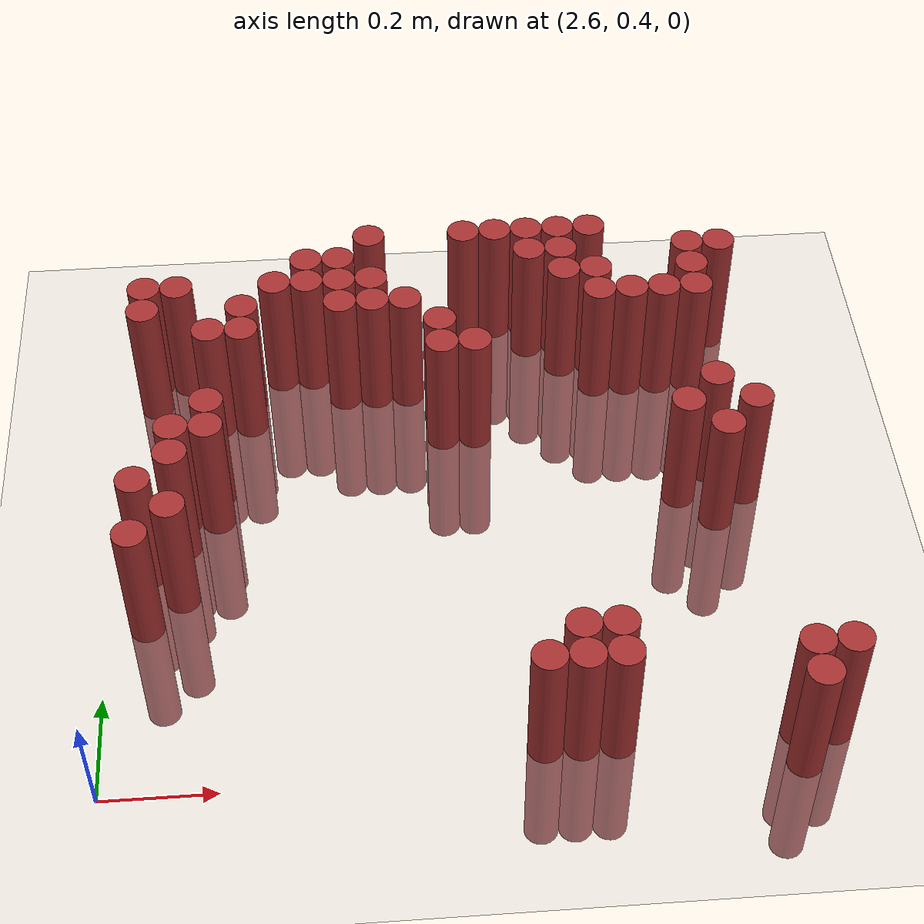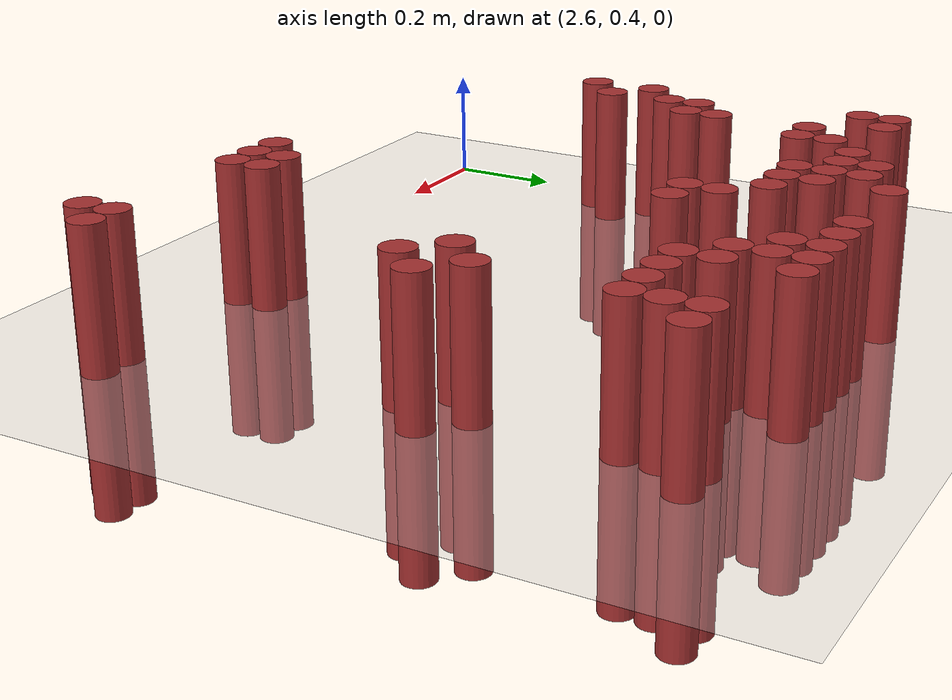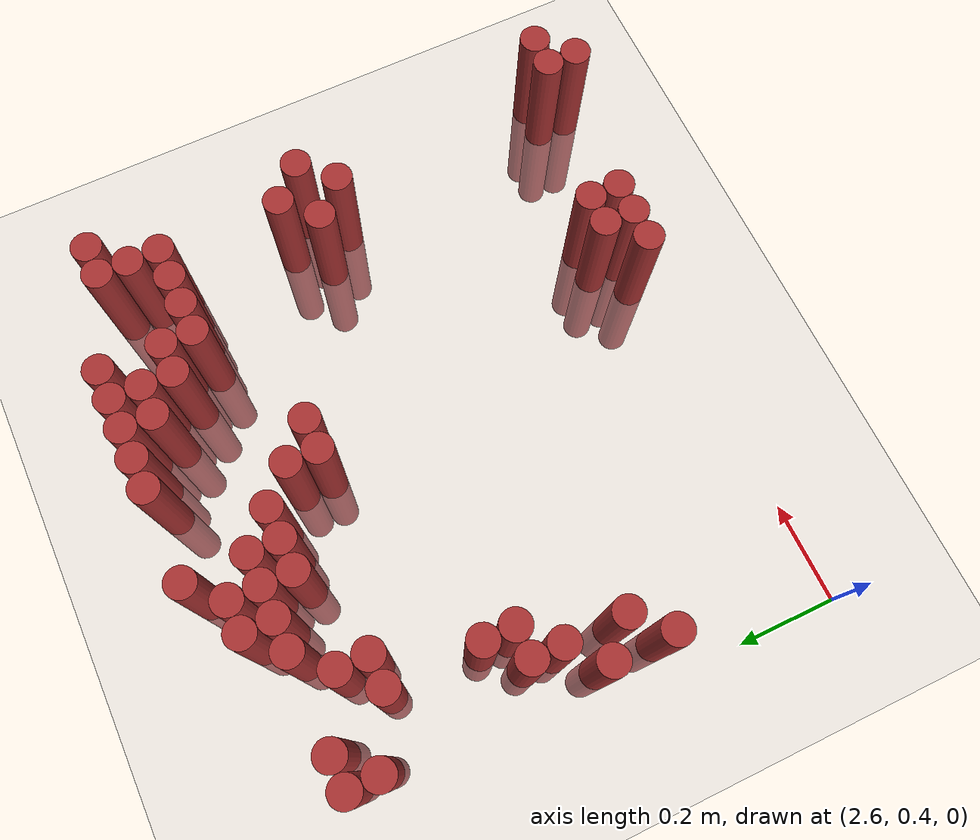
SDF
<sdf version="1.6">
 <world name="default">
  <model name="ground_plane">
   <static>1</static>
   <link name="link">
    <collision name="collision">
     <geometry><plane><normal>0 0 1</normal><size>100 100</size></plane></geometry>
     <surface><friction><ode><mu>100</mu><mu2>50</mu2></ode></friction></surface>
    </collision>
    <visual name="visual">
     <cast_shadows>0</cast_shadows>
     <geometry><plane><normal>0 0 1</normal><size>100 100</size></plane></geometry>
     <material>
      <script><uri>file://media/materials/scripts/gazebo.material</uri><name>Gazebo/Grey</name></script>
     </material>
    </visual>
   </link>
  </model>
  <model name="unit_cylinder_174">
   <static>1</static>
   <pose>3.090000 1.470000 0.000000 0.000000 0.000000 0.000000</pose>
   <link name="link">
    <inertial>
     <mass>1</mass>
     <inertia><ixx>0.145833</ixx><ixy>0</ixy><ixz>0</ixz><iyy>0.145833</iyy><iyz>0</iyz><izz>0.125</izz></inertia>
    </inertial>
    <collision name="collision">
     <geometry><cylinder><radius>0.030000</radius><length>0.5</length></cylinder></geometry>
    </collision>
    <visual name="visual">
     <geometry><cylinder><radius>0.030000</radius><length>0.5</length></cylinder></geometry>
     <material>
      <ambient>0.648000 0.192000 0.192000 1</ambient>
      <diffuse>0.648000 0.192000 0.192000 1</diffuse>
     </material>
     <material>
      <script><name>Gazebo/Grey</name><uri>file://media/materials/scripts/gazebo.material</uri></script>
     </material>
    </visual>
   </link>
  </model>
  <model name="unit_cylinder_175">
   <static>1</static>
   <pose>3.270000 1.470000 0.000000 0.000000 0.000000 0.000000</pose>
   <link name="link">
    <inertial>
     <mass>1</mass>
     <inertia><ixx>0.145833</ixx><ixy>0</ixy><ixz>0</ixz><iyy>0.145833</iyy><iyz>0</iyz><izz>0.125</izz></inertia>
    </inertial>
    <collision name="collision">
     <geometry><cylinder><radius>0.030000</radius><length>0.5</length></cylinder></geometry>
    </collision>
    <visual name="visual">
     <geometry><cylinder><radius>0.030000</radius><length>0.5</length></cylinder></geometry>
     <material>
      <ambient>0.648000 0.192000 0.192000 1</ambient>
      <diffuse>0.648000 0.192000 0.192000 1</diffuse>
     </material>
     <material>
      <script><name>Gazebo/Grey</name><uri>file://media/materials/scripts/gazebo.material</uri></script>
     </material>
    </visual>
   </link>
  </model>
  <model name="unit_cylinder_176">
   <static>1</static>
   <pose>3.330000 1.470000 0.000000 0.000000 0.000000 0.000000</pose>
   <link name="link">
    <inertial>
     <mass>1</mass>
     <inertia><ixx>0.145833</ixx><ixy>0</ixy><ixz>0</ixz><iyy>0.145833</iyy><iyz>0</iyz><izz>0.125</izz></inertia>
    </inertial>
    <collision name="collision">
     <geometry><cylinder><radius>0.030000</radius><length>0.5</length></cylinder></geometry>
    </collision>
    <visual name="visual">
     <geometry><cylinder><radius>0.030000</radius><length>0.5</length></cylinder></geometry>
     <material>
      <ambient>0.648000 0.192000 0.192000 1</ambient>
      <diffuse>0.648000 0.192000 0.192000 1</diffuse>
     </material>
     <material>
      <script><name>Gazebo/Grey</name><uri>file://media/materials/scripts/gazebo.material</uri></script>
     </material>
    </visual>
   </link>
  </model>
  <model name="unit_cylinder_177">
   <static>1</static>
   <pose>3.390000 1.470000 0.000000 0.000000 0.000000 0.000000</pose>
   <link name="link">
    <inertial>
     <mass>1</mass>
     <inertia><ixx>0.145833</ixx><ixy>0</ixy><ixz>0</ixz><iyy>0.145833</iyy><iyz>0</iyz><izz>0.125</izz></inertia>
    </inertial>
    <collision name="collision">
     <geometry><cylinder><radius>0.030000</radius><length>0.5</length></cylinder></geometry>
    </collision>
    <visual name="visual">
     <geometry><cylinder><radius>0.030000</radius><length>0.5</length></cylinder></geometry>
     <material>
      <ambient>0.648000 0.192000 0.192000 1</ambient>
      <diffuse>0.648000 0.192000 0.192000 1</diffuse>
     </material>
     <material>
      <script><name>Gazebo/Grey</name><uri>file://media/materials/scripts/gazebo.material</uri></script>
     </material>
    </visual>
   </link>
  </model>
  <model name="unit_cylinder_178">
   <static>1</static>
   <pose>3.450000 1.470000 0.000000 0.000000 0.000000 0.000000</pose>
   <link name="link">
    <inertial>
     <mass>1</mass>
     <inertia><ixx>0.145833</ixx><ixy>0</ixy><ixz>0</ixz><iyy>0.145833</iyy><iyz>0</iyz><izz>0.125</izz></inertia>
    </inertial>
    <collision name="collision">
     <geometry><cylinder><radius>0.030000</radius><length>0.5</length></cylinder></geometry>
    </collision>
    <visual name="visual">
     <geometry><cylinder><radius>0.030000</radius><length>0.5</length></cylinder></geometry>
     <material>
      <ambient>0.648000 0.192000 0.192000 1</ambient>
      <diffuse>0.648000 0.192000 0.192000 1</diffuse>
     </material>
     <material>
      <script><name>Gazebo/Grey</name><uri>file://media/materials/scripts/gazebo.material</uri></script>
     </material>
    </visual>
   </link>
  </model>
  <model name="unit_cylinder_179">
   <static>1</static>
   <pose>3.510000 1.470000 0.000000 0.000000 0.000000 0.000000</pose>
   <link name="link">
    <inertial>
     <mass>1</mass>
     <inertia><ixx>0.145833</ixx><ixy>0</ixy><ixz>0</ixz><iyy>0.145833</iyy><iyz>0</iyz><izz>0.125</izz></inertia>
    </inertial>
    <collision name="collision">
     <geometry><cylinder><radius>0.030000</radius><length>0.5</length></cylinder></geometry>
    </collision>
    <visual name="visual">
     <geometry><cylinder><radius>0.030000</radius><length>0.5</length></cylinder></geometry>
     <material>
      <ambient>0.648000 0.192000 0.192000 1</ambient>
      <diffuse>0.648000 0.192000 0.192000 1</diffuse>
     </material>
     <material>
      <script><name>Gazebo/Grey</name><uri>file://media/materials/scripts/gazebo.material</uri></script>
     </material>
    </visual>
   </link>
  </model>
  <model name="unit_cylinder_186">
   <static>1</static>
   <pose>2.970000 1.410000 0.000000 0.000000 0.000000 0.000000</pose>
   <link name="link">
    <inertial>
     <mass>1</mass>
     <inertia><ixx>0.145833</ixx><ixy>0</ixy><ixz>0</ixz><iyy>0.145833</iyy><iyz>0</iyz><izz>0.125</izz></inertia>
    </inertial>
    <collision name="collision">
     <geometry><cylinder><radius>0.030000</radius><length>0.5</length></cylinder></geometry>
    </collision>
    <visual name="visual">
     <geometry><cylinder><radius>0.030000</radius><length>0.5</length></cylinder></geometry>
     <material>
      <ambient>0.648000 0.192000 0.192000 1</ambient>
      <diffuse>0.648000 0.192000 0.192000 1</diffuse>
     </material>
     <material>
      <script><name>Gazebo/Grey</name><uri>file://media/materials/scripts/gazebo.material</uri></script>
     </material>
    </visual>
   </link>
  </model>
  <model name="unit_cylinder_187">
   <static>1</static>
   <pose>3.030000 1.410000 0.000000 0.000000 0.000000 0.000000</pose>
   <link name="link">
    <inertial>
     <mass>1</mass>
     <inertia><ixx>0.145833</ixx><ixy>0</ixy><ixz>0</ixz><iyy>0.145833</iyy><iyz>0</iyz><izz>0.125</izz></inertia>
    </inertial>
    <collision name="collision">
     <geometry><cylinder><radius>0.030000</radius><length>0.5</length></cylinder></geometry>
    </collision>
    <visual name="visual">
     <geometry><cylinder><radius>0.030000</radius><length>0.5</length></cylinder></geometry>
     <material>
      <ambient>0.648000 0.192000 0.192000 1</ambient>
      <diffuse>0.648000 0.192000 0.192000 1</diffuse>
     </material>
     <material>
      <script><name>Gazebo/Grey</name><uri>file://media/materials/scripts/gazebo.material</uri></script>
     </material>
    </visual>
   </link>
  </model>
  <model name="unit_cylinder_188">
   <static>1</static>
   <pose>3.390000 1.410000 0.000000 0.000000 0.000000 0.000000</pose>
   <link name="link">
    <inertial>
     <mass>1</mass>
     <inertia><ixx>0.145833</ixx><ixy>0</ixy><ixz>0</ixz><iyy>0.145833</iyy><iyz>0</iyz><izz>0.125</izz></inertia>
    </inertial>
    <collision name="collision">
     <geometry><cylinder><radius>0.030000</radius><length>0.5</length></cylinder></geometry>
    </collision>
    <visual name="visual">
     <geometry><cylinder><radius>0.030000</radius><length>0.5</length></cylinder></geometry>
     <material>
      <ambient>0.648000 0.192000 0.192000 1</ambient>
      <diffuse>0.648000 0.192000 0.192000 1</diffuse>
     </material>
     <material>
      <script><name>Gazebo/Grey</name><uri>file://media/materials/scripts/gazebo.material</uri></script>
     </material>
    </visual>
   </link>
  </model>
  <model name="unit_cylinder_189">
   <static>1</static>
   <pose>3.450000 1.410000 0.000000 0.000000 0.000000 0.000000</pose>
   <link name="link">
    <inertial>
     <mass>1</mass>
     <inertia><ixx>0.145833</ixx><ixy>0</ixy><ixz>0</ixz><iyy>0.145833</iyy><iyz>0</iyz><izz>0.125</izz></inertia>
    </inertial>
    <collision name="collision">
     <geometry><cylinder><radius>0.030000</radius><length>0.5</length></cylinder></geometry>
    </collision>
    <visual name="visual">
     <geometry><cylinder><radius>0.030000</radius><length>0.5</length></cylinder></geometry>
     <material>
      <ambient>0.648000 0.192000 0.192000 1</ambient>
      <diffuse>0.648000 0.192000 0.192000 1</diffuse>
     </material>
     <material>
      <script><name>Gazebo/Grey</name><uri>file://media/materials/scripts/gazebo.material</uri></script>
     </material>
    </visual>
   </link>
  </model>
  <model name="unit_cylinder_190">
   <static>1</static>
   <pose>3.690000 1.410000 0.000000 0.000000 0.000000 0.000000</pose>
   <link name="link">
    <inertial>
     <mass>1</mass>
     <inertia><ixx>0.145833</ixx><ixy>0</ixy><ixz>0</ixz><iyy>0.145833</iyy><iyz>0</iyz><izz>0.125</izz></inertia>
    </inertial>
    <collision name="collision">
     <geometry><cylinder><radius>0.030000</radius><length>0.5</length></cylinder></geometry>
    </collision>
    <visual name="visual">
     <geometry><cylinder><radius>0.030000</radius><length>0.5</length></cylinder></geometry>
     <material>
      <ambient>0.648000 0.192000 0.192000 1</ambient>
      <diffuse>0.648000 0.192000 0.192000 1</diffuse>
     </material>
     <material>
      <script><name>Gazebo/Grey</name><uri>file://media/materials/scripts/gazebo.material</uri></script>
     </material>
    </visual>
   </link>
  </model>
  <model name="unit_cylinder_191">
   <static>1</static>
   <pose>3.750000 1.410000 0.000000 0.000000 0.000000 0.000000</pose>
   <link name="link">
    <inertial>
     <mass>1</mass>
     <inertia><ixx>0.145833</ixx><ixy>0</ixy><ixz>0</ixz><iyy>0.145833</iyy><iyz>0</iyz><izz>0.125</izz></inertia>
    </inertial>
    <collision name="collision">
     <geometry><cylinder><radius>0.030000</radius><length>0.5</length></cylinder></geometry>
    </collision>
    <visual name="visual">
     <geometry><cylinder><radius>0.030000</radius><length>0.5</length></cylinder></geometry>
     <material>
      <ambient>0.648000 0.192000 0.192000 1</ambient>
      <diffuse>0.648000 0.192000 0.192000 1</diffuse>
     </material>
     <material>
      <script><name>Gazebo/Grey</name><uri>file://media/materials/scripts/gazebo.material</uri></script>
     </material>
    </visual>
   </link>
  </model>
  <model name="unit_cylinder_192">
   <static>1</static>
   <pose>2.670000 1.350000 0.000000 0.000000 0.000000 0.000000</pose>
   <link name="link">
    <inertial>
     <mass>1</mass>
     <inertia><ixx>0.145833</ixx><ixy>0</ixy><ixz>0</ixz><iyy>0.145833</iyy><iyz>0</iyz><izz>0.125</izz></inertia>
    </inertial>
    <collision name="collision">
     <geometry><cylinder><radius>0.030000</radius><length>0.5</length></cylinder></geometry>
    </collision>
    <visual name="visual">
     <geometry><cylinder><radius>0.030000</radius><length>0.5</length></cylinder></geometry>
     <material>
      <ambient>0.648000 0.192000 0.192000 1</ambient>
      <diffuse>0.648000 0.192000 0.192000 1</diffuse>
     </material>
     <material>
      <script><name>Gazebo/Grey</name><uri>file://media/materials/scripts/gazebo.material</uri></script>
     </material>
    </visual>
   </link>
  </model>
  <model name="unit_cylinder_193">
   <static>1</static>
   <pose>2.730000 1.350000 0.000000 0.000000 0.000000 0.000000</pose>
   <link name="link">
    <inertial>
     <mass>1</mass>
     <inertia><ixx>0.145833</ixx><ixy>0</ixy><ixz>0</ixz><iyy>0.145833</iyy><iyz>0</iyz><izz>0.125</izz></inertia>
    </inertial>
    <collision name="collision">
     <geometry><cylinder><radius>0.030000</radius><length>0.5</length></cylinder></geometry>
    </collision>
    <visual name="visual">
     <geometry><cylinder><radius>0.030000</radius><length>0.5</length></cylinder></geometry>
     <material>
      <ambient>0.648000 0.192000 0.192000 1</ambient>
      <diffuse>0.648000 0.192000 0.192000 1</diffuse>
     </material>
     <material>
      <script><name>Gazebo/Grey</name><uri>file://media/materials/scripts/gazebo.material</uri></script>
     </material>
    </visual>
   </link>
  </model>
  <model name="unit_cylinder_194">
   <static>1</static>
   <pose>2.910000 1.350000 0.000000 0.000000 0.000000 0.000000</pose>
   <link name="link">
    <inertial>
     <mass>1</mass>
     <inertia><ixx>0.145833</ixx><ixy>0</ixy><ixz>0</ixz><iyy>0.145833</iyy><iyz>0</iyz><izz>0.125</izz></inertia>
    </inertial>
    <collision name="collision">
     <geometry><cylinder><radius>0.030000</radius><length>0.5</length></cylinder></geometry>
    </collision>
    <visual name="visual">
     <geometry><cylinder><radius>0.030000</radius><length>0.5</length></cylinder></geometry>
     <material>
      <ambient>0.648000 0.192000 0.192000 1</ambient>
      <diffuse>0.648000 0.192000 0.192000 1</diffuse>
     </material>
     <material>
      <script><name>Gazebo/Grey</name><uri>file://media/materials/scripts/gazebo.material</uri></script>
     </material>
    </visual>
   </link>
  </model>
  <model name="unit_cylinder_195">
   <static>1</static>
   <pose>2.970000 1.350000 0.000000 0.000000 0.000000 0.000000</pose>
   <link name="link">
    <inertial>
     <mass>1</mass>
     <inertia><ixx>0.145833</ixx><ixy>0</ixy><ixz>0</ixz><iyy>0.145833</iyy><iyz>0</iyz><izz>0.125</izz></inertia>
    </inertial>
    <collision name="collision">
     <geometry><cylinder><radius>0.030000</radius><length>0.5</length></cylinder></geometry>
    </collision>
    <visual name="visual">
     <geometry><cylinder><radius>0.030000</radius><length>0.5</length></cylinder></geometry>
     <material>
      <ambient>0.648000 0.192000 0.192000 1</ambient>
      <diffuse>0.648000 0.192000 0.192000 1</diffuse>
     </material>
     <material>
      <script><name>Gazebo/Grey</name><uri>file://media/materials/scripts/gazebo.material</uri></script>
     </material>
    </visual>
   </link>
  </model>
  <model name="unit_cylinder_196">
   <static>1</static>
   <pose>3.030000 1.350000 0.000000 0.000000 0.000000 0.000000</pose>
   <link name="link">
    <inertial>
     <mass>1</mass>
     <inertia><ixx>0.145833</ixx><ixy>0</ixy><ixz>0</ixz><iyy>0.145833</iyy><iyz>0</iyz><izz>0.125</izz></inertia>
    </inertial>
    <collision name="collision">
     <geometry><cylinder><radius>0.030000</radius><length>0.5</length></cylinder></geometry>
    </collision>
    <visual name="visual">
     <geometry><cylinder><radius>0.030000</radius><length>0.5</length></cylinder></geometry>
     <material>
      <ambient>0.648000 0.192000 0.192000 1</ambient>
      <diffuse>0.648000 0.192000 0.192000 1</diffuse>
     </material>
     <material>
      <script><name>Gazebo/Grey</name><uri>file://media/materials/scripts/gazebo.material</uri></script>
     </material>
    </visual>
   </link>
  </model>
  <model name="unit_cylinder_197">
   <static>1</static>
   <pose>3.090000 1.350000 0.000000 0.000000 0.000000 0.000000</pose>
   <link name="link">
    <inertial>
     <mass>1</mass>
     <inertia><ixx>0.145833</ixx><ixy>0</ixy><ixz>0</ixz><iyy>0.145833</iyy><iyz>0</iyz><izz>0.125</izz></inertia>
    </inertial>
    <collision name="collision">
     <geometry><cylinder><radius>0.030000</radius><length>0.5</length></cylinder></geometry>
    </collision>
    <visual name="visual">
     <geometry><cylinder><radius>0.030000</radius><length>0.5</length></cylinder></geometry>
     <material>
      <ambient>0.648000 0.192000 0.192000 1</ambient>
      <diffuse>0.648000 0.192000 0.192000 1</diffuse>
     </material>
     <material>
      <script><name>Gazebo/Grey</name><uri>file://media/materials/scripts/gazebo.material</uri></script>
     </material>
    </visual>
   </link>
  </model>
  <model name="unit_cylinder_198">
   <static>1</static>
   <pose>3.450000 1.350000 0.000000 0.000000 0.000000 0.000000</pose>
   <link name="link">
    <inertial>
     <mass>1</mass>
     <inertia><ixx>0.145833</ixx><ixy>0</ixy><ixz>0</ixz><iyy>0.145833</iyy><iyz>0</iyz><izz>0.125</izz></inertia>
    </inertial>
    <collision name="collision">
     <geometry><cylinder><radius>0.030000</radius><length>0.5</length></cylinder></geometry>
    </collision>
    <visual name="visual">
     <geometry><cylinder><radius>0.030000</radius><length>0.5</length></cylinder></geometry>
     <material>
      <ambient>0.648000 0.192000 0.192000 1</ambient>
      <diffuse>0.648000 0.192000 0.192000 1</diffuse>
     </material>
     <material>
      <script><name>Gazebo/Grey</name><uri>file://media/materials/scripts/gazebo.material</uri></script>
     </material>
    </visual>
   </link>
  </model>
  <model name="unit_cylinder_199">
   <static>1</static>
   <pose>3.510000 1.350000 0.000000 0.000000 0.000000 0.000000</pose>
   <link name="link">
    <inertial>
     <mass>1</mass>
     <inertia><ixx>0.145833</ixx><ixy>0</ixy><ixz>0</ixz><iyy>0.145833</iyy><iyz>0</iyz><izz>0.125</izz></inertia>
    </inertial>
    <collision name="collision">
     <geometry><cylinder><radius>0.030000</radius><length>0.5</length></cylinder></geometry>
    </collision>
    <visual name="visual">
     <geometry><cylinder><radius>0.030000</radius><length>0.5</length></cylinder></geometry>
     <material>
      <ambient>0.648000 0.192000 0.192000 1</ambient>
      <diffuse>0.648000 0.192000 0.192000 1</diffuse>
     </material>
     <material>
      <script><name>Gazebo/Grey</name><uri>file://media/materials/scripts/gazebo.material</uri></script>
     </material>
    </visual>
   </link>
  </model>
  <model name="unit_cylinder_200">
   <static>1</static>
   <pose>3.690000 1.350000 0.000000 0.000000 0.000000 0.000000</pose>
   <link name="link">
    <inertial>
     <mass>1</mass>
     <inertia><ixx>0.145833</ixx><ixy>0</ixy><ixz>0</ixz><iyy>0.145833</iyy><iyz>0</iyz><izz>0.125</izz></inertia>
    </inertial>
    <collision name="collision">
     <geometry><cylinder><radius>0.030000</radius><length>0.5</length></cylinder></geometry>
    </collision>
    <visual name="visual">
     <geometry><cylinder><radius>0.030000</radius><length>0.5</length></cylinder></geometry>
     <material>
      <ambient>0.648000 0.192000 0.192000 1</ambient>
      <diffuse>0.648000 0.192000 0.192000 1</diffuse>
     </material>
     <material>
      <script><name>Gazebo/Grey</name><uri>file://media/materials/scripts/gazebo.material</uri></script>
     </material>
    </visual>
   </link>
  </model>
  <model name="unit_cylinder_201">
   <static>1</static>
   <pose>2.670000 1.290000 0.000000 0.000000 0.000000 0.000000</pose>
   <link name="link">
    <inertial>
     <mass>1</mass>
     <inertia><ixx>0.145833</ixx><ixy>0</ixy><ixz>0</ixz><iyy>0.145833</iyy><iyz>0</iyz><izz>0.125</izz></inertia>
    </inertial>
    <collision name="collision">
     <geometry><cylinder><radius>0.030000</radius><length>0.5</length></cylinder></geometry>
    </collision>
    <visual name="visual">
     <geometry><cylinder><radius>0.030000</radius><length>0.5</length></cylinder></geometry>
     <material>
      <ambient>0.648000 0.192000 0.192000 1</ambient>
      <diffuse>0.648000 0.192000 0.192000 1</diffuse>
     </material>
     <material>
      <script><name>Gazebo/Grey</name><uri>file://media/materials/scripts/gazebo.material</uri></script>
     </material>
    </visual>
   </link>
  </model>
  <model name="unit_cylinder_202">
   <static>1</static>
   <pose>2.850000 1.290000 0.000000 0.000000 0.000000 0.000000</pose>
   <link name="link">
    <inertial>
     <mass>1</mass>
     <inertia><ixx>0.145833</ixx><ixy>0</ixy><ixz>0</ixz><iyy>0.145833</iyy><iyz>0</iyz><izz>0.125</izz></inertia>
    </inertial>
    <collision name="collision">
     <geometry><cylinder><radius>0.030000</radius><length>0.5</length></cylinder></geometry>
    </collision>
    <visual name="visual">
     <geometry><cylinder><radius>0.030000</radius><length>0.5</length></cylinder></geometry>
     <material>
      <ambient>0.648000 0.192000 0.192000 1</ambient>
      <diffuse>0.648000 0.192000 0.192000 1</diffuse>
     </material>
     <material>
      <script><name>Gazebo/Grey</name><uri>file://media/materials/scripts/gazebo.material</uri></script>
     </material>
    </visual>
   </link>
  </model>
  <model name="unit_cylinder_203">
   <static>1</static>
   <pose>3.030000 1.290000 0.000000 0.000000 0.000000 0.000000</pose>
   <link name="link">
    <inertial>
     <mass>1</mass>
     <inertia><ixx>0.145833</ixx><ixy>0</ixy><ixz>0</ixz><iyy>0.145833</iyy><iyz>0</iyz><izz>0.125</izz></inertia>
    </inertial>
    <collision name="collision">
     <geometry><cylinder><radius>0.030000</radius><length>0.5</length></cylinder></geometry>
    </collision>
    <visual name="visual">
     <geometry><cylinder><radius>0.030000</radius><length>0.5</length></cylinder></geometry>
     <material>
      <ambient>0.648000 0.192000 0.192000 1</ambient>
      <diffuse>0.648000 0.192000 0.192000 1</diffuse>
     </material>
     <material>
      <script><name>Gazebo/Grey</name><uri>file://media/materials/scripts/gazebo.material</uri></script>
     </material>
    </visual>
   </link>
  </model>
  <model name="unit_cylinder_204">
   <static>1</static>
   <pose>3.090000 1.290000 0.000000 0.000000 0.000000 0.000000</pose>
   <link name="link">
    <inertial>
     <mass>1</mass>
     <inertia><ixx>0.145833</ixx><ixy>0</ixy><ixz>0</ixz><iyy>0.145833</iyy><iyz>0</iyz><izz>0.125</izz></inertia>
    </inertial>
    <collision name="collision">
     <geometry><cylinder><radius>0.030000</radius><length>0.5</length></cylinder></geometry>
    </collision>
    <visual name="visual">
     <geometry><cylinder><radius>0.030000</radius><length>0.5</length></cylinder></geometry>
     <material>
      <ambient>0.648000 0.192000 0.192000 1</ambient>
      <diffuse>0.648000 0.192000 0.192000 1</diffuse>
     </material>
     <material>
      <script><name>Gazebo/Grey</name><uri>file://media/materials/scripts/gazebo.material</uri></script>
     </material>
    </visual>
   </link>
  </model>
  <model name="unit_cylinder_205">
   <static>1</static>
   <pose>3.150000 1.290000 0.000000 0.000000 0.000000 0.000000</pose>
   <link name="link">
    <inertial>
     <mass>1</mass>
     <inertia><ixx>0.145833</ixx><ixy>0</ixy><ixz>0</ixz><iyy>0.145833</iyy><iyz>0</iyz><izz>0.125</izz></inertia>
    </inertial>
    <collision name="collision">
     <geometry><cylinder><radius>0.030000</radius><length>0.5</length></cylinder></geometry>
    </collision>
    <visual name="visual">
     <geometry><cylinder><radius>0.030000</radius><length>0.5</length></cylinder></geometry>
     <material>
      <ambient>0.648000 0.192000 0.192000 1</ambient>
      <diffuse>0.648000 0.192000 0.192000 1</diffuse>
     </material>
     <material>
      <script><name>Gazebo/Grey</name><uri>file://media/materials/scripts/gazebo.material</uri></script>
     </material>
    </visual>
   </link>
  </model>
  <model name="unit_cylinder_206">
   <static>1</static>
   <pose>3.510000 1.290000 0.000000 0.000000 0.000000 0.000000</pose>
   <link name="link">
    <inertial>
     <mass>1</mass>
     <inertia><ixx>0.145833</ixx><ixy>0</ixy><ixz>0</ixz><iyy>0.145833</iyy><iyz>0</iyz><izz>0.125</izz></inertia>
    </inertial>
    <collision name="collision">
     <geometry><cylinder><radius>0.030000</radius><length>0.5</length></cylinder></geometry>
    </collision>
    <visual name="visual">
     <geometry><cylinder><radius>0.030000</radius><length>0.5</length></cylinder></geometry>
     <material>
      <ambient>0.648000 0.192000 0.192000 1</ambient>
      <diffuse>0.648000 0.192000 0.192000 1</diffuse>
     </material>
     <material>
      <script><name>Gazebo/Grey</name><uri>file://media/materials/scripts/gazebo.material</uri></script>
     </material>
    </visual>
   </link>
  </model>
  <model name="unit_cylinder_207">
   <static>1</static>
   <pose>3.570000 1.290000 0.000000 0.000000 0.000000 0.000000</pose>
   <link name="link">
    <inertial>
     <mass>1</mass>
     <inertia><ixx>0.145833</ixx><ixy>0</ixy><ixz>0</ixz><iyy>0.145833</iyy><iyz>0</iyz><izz>0.125</izz></inertia>
    </inertial>
    <collision name="collision">
     <geometry><cylinder><radius>0.030000</radius><length>0.5</length></cylinder></geometry>
    </collision>
    <visual name="visual">
     <geometry><cylinder><radius>0.030000</radius><length>0.5</length></cylinder></geometry>
     <material>
      <ambient>0.648000 0.192000 0.192000 1</ambient>
      <diffuse>0.648000 0.192000 0.192000 1</diffuse>
     </material>
     <material>
      <script><name>Gazebo/Grey</name><uri>file://media/materials/scripts/gazebo.material</uri></script>
     </material>
    </visual>
   </link>
  </model>
  <model name="unit_cylinder_208">
   <static>1</static>
   <pose>3.630000 1.290000 0.000000 0.000000 0.000000 0.000000</pose>
   <link name="link">
    <inertial>
     <mass>1</mass>
     <inertia><ixx>0.145833</ixx><ixy>0</ixy><ixz>0</ixz><iyy>0.145833</iyy><iyz>0</iyz><izz>0.125</izz></inertia>
    </inertial>
    <collision name="collision">
     <geometry><cylinder><radius>0.030000</radius><length>0.5</length></cylinder></geometry>
    </collision>
    <visual name="visual">
     <geometry><cylinder><radius>0.030000</radius><length>0.5</length></cylinder></geometry>
     <material>
      <ambient>0.648000 0.192000 0.192000 1</ambient>
      <diffuse>0.648000 0.192000 0.192000 1</diffuse>
     </material>
     <material>
      <script><name>Gazebo/Grey</name><uri>file://media/materials/scripts/gazebo.material</uri></script>
     </material>
    </visual>
   </link>
  </model>
  <model name="unit_cylinder_209">
   <static>1</static>
   <pose>3.690000 1.290000 0.000000 0.000000 0.000000 0.000000</pose>
   <link name="link">
    <inertial>
     <mass>1</mass>
     <inertia><ixx>0.145833</ixx><ixy>0</ixy><ixz>0</ixz><iyy>0.145833</iyy><iyz>0</iyz><izz>0.125</izz></inertia>
    </inertial>
    <collision name="collision">
     <geometry><cylinder><radius>0.030000</radius><length>0.5</length></cylinder></geometry>
    </collision>
    <visual name="visual">
     <geometry><cylinder><radius>0.030000</radius><length>0.5</length></cylinder></geometry>
     <material>
      <ambient>0.648000 0.192000 0.192000 1</ambient>
      <diffuse>0.648000 0.192000 0.192000 1</diffuse>
     </material>
     <material>
      <script><name>Gazebo/Grey</name><uri>file://media/materials/scripts/gazebo.material</uri></script>
     </material>
    </visual>
   </link>
  </model>
  <model name="unit_cylinder_213">
   <static>1</static>
   <pose>2.790000 1.230000 0.000000 0.000000 0.000000 0.000000</pose>
   <link name="link">
    <inertial>
     <mass>1</mass>
     <inertia><ixx>0.145833</ixx><ixy>0</ixy><ixz>0</ixz><iyy>0.145833</iyy><iyz>0</iyz><izz>0.125</izz></inertia>
    </inertial>
    <collision name="collision">
     <geometry><cylinder><radius>0.030000</radius><length>0.5</length></cylinder></geometry>
    </collision>
    <visual name="visual">
     <geometry><cylinder><radius>0.030000</radius><length>0.5</length></cylinder></geometry>
     <material>
      <ambient>0.648000 0.192000 0.192000 1</ambient>
      <diffuse>0.648000 0.192000 0.192000 1</diffuse>
     </material>
     <material>
      <script><name>Gazebo/Grey</name><uri>file://media/materials/scripts/gazebo.material</uri></script>
     </material>
    </visual>
   </link>
  </model>
  <model name="unit_cylinder_214">
   <static>1</static>
   <pose>2.850000 1.230000 0.000000 0.000000 0.000000 0.000000</pose>
   <link name="link">
    <inertial>
     <mass>1</mass>
     <inertia><ixx>0.145833</ixx><ixy>0</ixy><ixz>0</ixz><iyy>0.145833</iyy><iyz>0</iyz><izz>0.125</izz></inertia>
    </inertial>
    <collision name="collision">
     <geometry><cylinder><radius>0.030000</radius><length>0.5</length></cylinder></geometry>
    </collision>
    <visual name="visual">
     <geometry><cylinder><radius>0.030000</radius><length>0.5</length></cylinder></geometry>
     <material>
      <ambient>0.648000 0.192000 0.192000 1</ambient>
      <diffuse>0.648000 0.192000 0.192000 1</diffuse>
     </material>
     <material>
      <script><name>Gazebo/Grey</name><uri>file://media/materials/scripts/gazebo.material</uri></script>
     </material>
    </visual>
   </link>
  </model>
  <model name="unit_cylinder_215">
   <static>1</static>
   <pose>3.210000 1.230000 0.000000 0.000000 0.000000 0.000000</pose>
   <link name="link">
    <inertial>
     <mass>1</mass>
     <inertia><ixx>0.145833</ixx><ixy>0</ixy><ixz>0</ixz><iyy>0.145833</iyy><iyz>0</iyz><izz>0.125</izz></inertia>
    </inertial>
    <collision name="collision">
     <geometry><cylinder><radius>0.030000</radius><length>0.5</length></cylinder></geometry>
    </collision>
    <visual name="visual">
     <geometry><cylinder><radius>0.030000</radius><length>0.5</length></cylinder></geometry>
     <material>
      <ambient>0.648000 0.192000 0.192000 1</ambient>
      <diffuse>0.648000 0.192000 0.192000 1</diffuse>
     </material>
     <material>
      <script><name>Gazebo/Grey</name><uri>file://media/materials/scripts/gazebo.material</uri></script>
     </material>
    </visual>
   </link>
  </model>
  <model name="unit_cylinder_221">
   <static>1</static>
   <pose>3.210000 1.170000 0.000000 0.000000 0.000000 0.000000</pose>
   <link name="link">
    <inertial>
     <mass>1</mass>
     <inertia><ixx>0.145833</ixx><ixy>0</ixy><ixz>0</ixz><iyy>0.145833</iyy><iyz>0</iyz><izz>0.125</izz></inertia>
    </inertial>
    <collision name="collision">
     <geometry><cylinder><radius>0.030000</radius><length>0.5</length></cylinder></geometry>
    </collision>
    <visual name="visual">
     <geometry><cylinder><radius>0.030000</radius><length>0.5</length></cylinder></geometry>
     <material>
      <ambient>0.648000 0.192000 0.192000 1</ambient>
      <diffuse>0.648000 0.192000 0.192000 1</diffuse>
     </material>
     <material>
      <script><name>Gazebo/Grey</name><uri>file://media/materials/scripts/gazebo.material</uri></script>
     </material>
    </visual>
   </link>
  </model>
  <model name="unit_cylinder_222">
   <static>1</static>
   <pose>3.270000 1.170000 0.000000 0.000000 0.000000 0.000000</pose>
   <link name="link">
    <inertial>
     <mass>1</mass>
     <inertia><ixx>0.145833</ixx><ixy>0</ixy><ixz>0</ixz><iyy>0.145833</iyy><iyz>0</iyz><izz>0.125</izz></inertia>
    </inertial>
    <collision name="collision">
     <geometry><cylinder><radius>0.030000</radius><length>0.5</length></cylinder></geometry>
    </collision>
    <visual name="visual">
     <geometry><cylinder><radius>0.030000</radius><length>0.5</length></cylinder></geometry>
     <material>
      <ambient>0.648000 0.192000 0.192000 1</ambient>
      <diffuse>0.648000 0.192000 0.192000 1</diffuse>
     </material>
     <material>
      <script><name>Gazebo/Grey</name><uri>file://media/materials/scripts/gazebo.material</uri></script>
     </material>
    </visual>
   </link>
  </model>
  <model name="unit_cylinder_228">
   <static>1</static>
   <pose>2.790000 1.050000 0.000000 0.000000 0.000000 0.000000</pose>
   <link name="link">
    <inertial>
     <mass>1</mass>
     <inertia><ixx>0.145833</ixx><ixy>0</ixy><ixz>0</ixz><iyy>0.145833</iyy><iyz>0</iyz><izz>0.125</izz></inertia>
    </inertial>
    <collision name="collision">
     <geometry><cylinder><radius>0.030000</radius><length>0.5</length></cylinder></geometry>
    </collision>
    <visual name="visual">
     <geometry><cylinder><radius>0.030000</radius><length>0.5</length></cylinder></geometry>
     <material>
      <ambient>0.648000 0.192000 0.192000 1</ambient>
      <diffuse>0.648000 0.192000 0.192000 1</diffuse>
     </material>
     <material>
      <script><name>Gazebo/Grey</name><uri>file://media/materials/scripts/gazebo.material</uri></script>
     </material>
    </visual>
   </link>
  </model>
  <model name="unit_cylinder_229">
   <static>1</static>
   <pose>3.690000 1.050000 0.000000 0.000000 0.000000 0.000000</pose>
   <link name="link">
    <inertial>
     <mass>1</mass>
     <inertia><ixx>0.145833</ixx><ixy>0</ixy><ixz>0</ixz><iyy>0.145833</iyy><iyz>0</iyz><izz>0.125</izz></inertia>
    </inertial>
    <collision name="collision">
     <geometry><cylinder><radius>0.030000</radius><length>0.5</length></cylinder></geometry>
    </collision>
    <visual name="visual">
     <geometry><cylinder><radius>0.030000</radius><length>0.5</length></cylinder></geometry>
     <material>
      <ambient>0.648000 0.192000 0.192000 1</ambient>
      <diffuse>0.648000 0.192000 0.192000 1</diffuse>
     </material>
     <material>
      <script><name>Gazebo/Grey</name><uri>file://media/materials/scripts/gazebo.material</uri></script>
     </material>
    </visual>
   </link>
  </model>
  <model name="unit_cylinder_231">
   <static>1</static>
   <pose>2.730000 0.990000 0.000000 0.000000 0.000000 0.000000</pose>
   <link name="link">
    <inertial>
     <mass>1</mass>
     <inertia><ixx>0.145833</ixx><ixy>0</ixy><ixz>0</ixz><iyy>0.145833</iyy><iyz>0</iyz><izz>0.125</izz></inertia>
    </inertial>
    <collision name="collision">
     <geometry><cylinder><radius>0.030000</radius><length>0.5</length></cylinder></geometry>
    </collision>
    <visual name="visual">
     <geometry><cylinder><radius>0.030000</radius><length>0.5</length></cylinder></geometry>
     <material>
      <ambient>0.648000 0.192000 0.192000 1</ambient>
      <diffuse>0.648000 0.192000 0.192000 1</diffuse>
     </material>
     <material>
      <script><name>Gazebo/Grey</name><uri>file://media/materials/scripts/gazebo.material</uri></script>
     </material>
    </visual>
   </link>
  </model>
  <model name="unit_cylinder_232">
   <static>1</static>
   <pose>2.790000 0.990000 0.000000 0.000000 0.000000 0.000000</pose>
   <link name="link">
    <inertial>
     <mass>1</mass>
     <inertia><ixx>0.145833</ixx><ixy>0</ixy><ixz>0</ixz><iyy>0.145833</iyy><iyz>0</iyz><izz>0.125</izz></inertia>
    </inertial>
    <collision name="collision">
     <geometry><cylinder><radius>0.030000</radius><length>0.5</length></cylinder></geometry>
    </collision>
    <visual name="visual">
     <geometry><cylinder><radius>0.030000</radius><length>0.5</length></cylinder></geometry>
     <material>
      <ambient>0.648000 0.192000 0.192000 1</ambient>
      <diffuse>0.648000 0.192000 0.192000 1</diffuse>
     </material>
     <material>
      <script><name>Gazebo/Grey</name><uri>file://media/materials/scripts/gazebo.material</uri></script>
     </material>
    </visual>
   </link>
  </model>
  <model name="unit_cylinder_233">
   <static>1</static>
   <pose>3.630000 0.990000 0.000000 0.000000 0.000000 0.000000</pose>
   <link name="link">
    <inertial>
     <mass>1</mass>
     <inertia><ixx>0.145833</ixx><ixy>0</ixy><ixz>0</ixz><iyy>0.145833</iyy><iyz>0</iyz><izz>0.125</izz></inertia>
    </inertial>
    <collision name="collision">
     <geometry><cylinder><radius>0.030000</radius><length>0.5</length></cylinder></geometry>
    </collision>
    <visual name="visual">
     <geometry><cylinder><radius>0.030000</radius><length>0.5</length></cylinder></geometry>
     <material>
      <ambient>0.648000 0.192000 0.192000 1</ambient>
      <diffuse>0.648000 0.192000 0.192000 1</diffuse>
     </material>
     <material>
      <script><name>Gazebo/Grey</name><uri>file://media/materials/scripts/gazebo.material</uri></script>
     </material>
    </visual>
   </link>
  </model>
  <model name="unit_cylinder_234">
   <static>1</static>
   <pose>3.750000 0.990000 0.000000 0.000000 0.000000 0.000000</pose>
   <link name="link">
    <inertial>
     <mass>1</mass>
     <inertia><ixx>0.145833</ixx><ixy>0</ixy><ixz>0</ixz><iyy>0.145833</iyy><iyz>0</iyz><izz>0.125</izz></inertia>
    </inertial>
    <collision name="collision">
     <geometry><cylinder><radius>0.030000</radius><length>0.5</length></cylinder></geometry>
    </collision>
    <visual name="visual">
     <geometry><cylinder><radius>0.030000</radius><length>0.5</length></cylinder></geometry>
     <material>
      <ambient>0.648000 0.192000 0.192000 1</ambient>
      <diffuse>0.648000 0.192000 0.192000 1</diffuse>
     </material>
     <material>
      <script><name>Gazebo/Grey</name><uri>file://media/materials/scripts/gazebo.material</uri></script>
     </material>
    </visual>
   </link>
  </model>
  <model name="unit_cylinder_235">
   <static>1</static>
   <pose>2.730000 0.930000 0.000000 0.000000 0.000000 0.000000</pose>
   <link name="link">
    <inertial>
     <mass>1</mass>
     <inertia><ixx>0.145833</ixx><ixy>0</ixy><ixz>0</ixz><iyy>0.145833</iyy><iyz>0</iyz><izz>0.125</izz></inertia>
    </inertial>
    <collision name="collision">
     <geometry><cylinder><radius>0.030000</radius><length>0.5</length></cylinder></geometry>
    </collision>
    <visual name="visual">
     <geometry><cylinder><radius>0.030000</radius><length>0.5</length></cylinder></geometry>
     <material>
      <ambient>0.648000 0.192000 0.192000 1</ambient>
      <diffuse>0.648000 0.192000 0.192000 1</diffuse>
     </material>
     <material>
      <script><name>Gazebo/Grey</name><uri>file://media/materials/scripts/gazebo.material</uri></script>
     </material>
    </visual>
   </link>
  </model>
  <model name="unit_cylinder_236">
   <static>1</static>
   <pose>3.690000 0.930000 0.000000 0.000000 0.000000 0.000000</pose>
   <link name="link">
    <inertial>
     <mass>1</mass>
     <inertia><ixx>0.145833</ixx><ixy>0</ixy><ixz>0</ixz><iyy>0.145833</iyy><iyz>0</iyz><izz>0.125</izz></inertia>
    </inertial>
    <collision name="collision">
     <geometry><cylinder><radius>0.030000</radius><length>0.5</length></cylinder></geometry>
    </collision>
    <visual name="visual">
     <geometry><cylinder><radius>0.030000</radius><length>0.5</length></cylinder></geometry>
     <material>
      <ambient>0.648000 0.192000 0.192000 1</ambient>
      <diffuse>0.648000 0.192000 0.192000 1</diffuse>
     </material>
     <material>
      <script><name>Gazebo/Grey</name><uri>file://media/materials/scripts/gazebo.material</uri></script>
     </material>
    </visual>
   </link>
  </model>
  <model name="unit_cylinder_237">
   <static>1</static>
   <pose>2.670000 0.870000 0.000000 0.000000 0.000000 0.000000</pose>
   <link name="link">
    <inertial>
     <mass>1</mass>
     <inertia><ixx>0.145833</ixx><ixy>0</ixy><ixz>0</ixz><iyy>0.145833</iyy><iyz>0</iyz><izz>0.125</izz></inertia>
    </inertial>
    <collision name="collision">
     <geometry><cylinder><radius>0.030000</radius><length>0.5</length></cylinder></geometry>
    </collision>
    <visual name="visual">
     <geometry><cylinder><radius>0.030000</radius><length>0.5</length></cylinder></geometry>
     <material>
      <ambient>0.648000 0.192000 0.192000 1</ambient>
      <diffuse>0.648000 0.192000 0.192000 1</diffuse>
     </material>
     <material>
      <script><name>Gazebo/Grey</name><uri>file://media/materials/scripts/gazebo.material</uri></script>
     </material>
    </visual>
   </link>
  </model>
  <model name="unit_cylinder_238">
   <static>1</static>
   <pose>2.730000 0.810000 0.000000 0.000000 0.000000 0.000000</pose>
   <link name="link">
    <inertial>
     <mass>1</mass>
     <inertia><ixx>0.145833</ixx><ixy>0</ixy><ixz>0</ixz><iyy>0.145833</iyy><iyz>0</iyz><izz>0.125</izz></inertia>
    </inertial>
    <collision name="collision">
     <geometry><cylinder><radius>0.030000</radius><length>0.5</length></cylinder></geometry>
    </collision>
    <visual name="visual">
     <geometry><cylinder><radius>0.030000</radius><length>0.5</length></cylinder></geometry>
     <material>
      <ambient>0.648000 0.192000 0.192000 1</ambient>
      <diffuse>0.648000 0.192000 0.192000 1</diffuse>
     </material>
     <material>
      <script><name>Gazebo/Grey</name><uri>file://media/materials/scripts/gazebo.material</uri></script>
     </material>
    </visual>
   </link>
  </model>
  <model name="unit_cylinder_240">
   <static>1</static>
   <pose>2.670000 0.750000 0.000000 0.000000 0.000000 0.000000</pose>
   <link name="link">
    <inertial>
     <mass>1</mass>
     <inertia><ixx>0.145833</ixx><ixy>0</ixy><ixz>0</ixz><iyy>0.145833</iyy><iyz>0</iyz><izz>0.125</izz></inertia>
    </inertial>
    <collision name="collision">
     <geometry><cylinder><radius>0.030000</radius><length>0.5</length></cylinder></geometry>
    </collision>
    <visual name="visual">
     <geometry><cylinder><radius>0.030000</radius><length>0.5</length></cylinder></geometry>
     <material>
      <ambient>0.648000 0.192000 0.192000 1</ambient>
      <diffuse>0.648000 0.192000 0.192000 1</diffuse>
     </material>
     <material>
      <script><name>Gazebo/Grey</name><uri>file://media/materials/scripts/gazebo.material</uri></script>
     </material>
    </visual>
   </link>
  </model>
  <model name="unit_cylinder_247">
   <static>1</static>
   <pose>3.390000 0.510000 0.000000 0.000000 0.000000 0.000000</pose>
   <link name="link">
    <inertial>
     <mass>1</mass>
     <inertia><ixx>0.145833</ixx><ixy>0</ixy><ixz>0</ixz><iyy>0.145833</iyy><iyz>0</iyz><izz>0.125</izz></inertia>
    </inertial>
    <collision name="collision">
     <geometry><cylinder><radius>0.030000</radius><length>0.5</length></cylinder></geometry>
    </collision>
    <visual name="visual">
     <geometry><cylinder><radius>0.030000</radius><length>0.5</length></cylinder></geometry>
     <material>
      <ambient>0.648000 0.192000 0.192000 1</ambient>
      <diffuse>0.648000 0.192000 0.192000 1</diffuse>
     </material>
     <material>
      <script><name>Gazebo/Grey</name><uri>file://media/materials/scripts/gazebo.material</uri></script>
     </material>
    </visual>
   </link>
  </model>
  <model name="unit_cylinder_248">
   <static>1</static>
   <pose>3.450000 0.510000 0.000000 0.000000 0.000000 0.000000</pose>
   <link name="link">
    <inertial>
     <mass>1</mass>
     <inertia><ixx>0.145833</ixx><ixy>0</ixy><ixz>0</ixz><iyy>0.145833</iyy><iyz>0</iyz><izz>0.125</izz></inertia>
    </inertial>
    <collision name="collision">
     <geometry><cylinder><radius>0.030000</radius><length>0.5</length></cylinder></geometry>
    </collision>
    <visual name="visual">
     <geometry><cylinder><radius>0.030000</radius><length>0.5</length></cylinder></geometry>
     <material>
      <ambient>0.648000 0.192000 0.192000 1</ambient>
      <diffuse>0.648000 0.192000 0.192000 1</diffuse>
     </material>
     <material>
      <script><name>Gazebo/Grey</name><uri>file://media/materials/scripts/gazebo.material</uri></script>
     </material>
    </visual>
   </link>
  </model>
  <model name="unit_cylinder_249">
   <static>1</static>
   <pose>3.330000 0.450000 0.000000 0.000000 0.000000 0.000000</pose>
   <link name="link">
    <inertial>
     <mass>1</mass>
     <inertia><ixx>0.145833</ixx><ixy>0</ixy><ixz>0</ixz><iyy>0.145833</iyy><iyz>0</iyz><izz>0.125</izz></inertia>
    </inertial>
    <collision name="collision">
     <geometry><cylinder><radius>0.030000</radius><length>0.5</length></cylinder></geometry>
    </collision>
    <visual name="visual">
     <geometry><cylinder><radius>0.030000</radius><length>0.5</length></cylinder></geometry>
     <material>
      <ambient>0.648000 0.192000 0.192000 1</ambient>
      <diffuse>0.648000 0.192000 0.192000 1</diffuse>
     </material>
     <material>
      <script><name>Gazebo/Grey</name><uri>file://media/materials/scripts/gazebo.material</uri></script>
     </material>
    </visual>
   </link>
  </model>
  <model name="unit_cylinder_250">
   <static>1</static>
   <pose>3.390000 0.450000 0.000000 0.000000 0.000000 0.000000</pose>
   <link name="link">
    <inertial>
     <mass>1</mass>
     <inertia><ixx>0.145833</ixx><ixy>0</ixy><ixz>0</ixz><iyy>0.145833</iyy><iyz>0</iyz><izz>0.125</izz></inertia>
    </inertial>
    <collision name="collision">
     <geometry><cylinder><radius>0.030000</radius><length>0.5</length></cylinder></geometry>
    </collision>
    <visual name="visual">
     <geometry><cylinder><radius>0.030000</radius><length>0.5</length></cylinder></geometry>
     <material>
      <ambient>0.648000 0.192000 0.192000 1</ambient>
      <diffuse>0.648000 0.192000 0.192000 1</diffuse>
     </material>
     <material>
      <script><name>Gazebo/Grey</name><uri>file://media/materials/scripts/gazebo.material</uri></script>
     </material>
    </visual>
   </link>
  </model>
  <model name="unit_cylinder_251">
   <static>1</static>
   <pose>3.450000 0.450000 0.000000 0.000000 0.000000 0.000000</pose>
   <link name="link">
    <inertial>
     <mass>1</mass>
     <inertia><ixx>0.145833</ixx><ixy>0</ixy><ixz>0</ixz><iyy>0.145833</iyy><iyz>0</iyz><izz>0.125</izz></inertia>
    </inertial>
    <collision name="collision">
     <geometry><cylinder><radius>0.030000</radius><length>0.5</length></cylinder></geometry>
    </collision>
    <visual name="visual">
     <geometry><cylinder><radius>0.030000</radius><length>0.5</length></cylinder></geometry>
     <material>
      <ambient>0.648000 0.192000 0.192000 1</ambient>
      <diffuse>0.648000 0.192000 0.192000 1</diffuse>
     </material>
     <material>
      <script><name>Gazebo/Grey</name><uri>file://media/materials/scripts/gazebo.material</uri></script>
     </material>
    </visual>
   </link>
  </model>
  <model name="unit_cylinder_252">
   <static>1</static>
   <pose>3.750000 0.450000 0.000000 0.000000 0.000000 0.000000</pose>
   <link name="link">
    <inertial>
     <mass>1</mass>
     <inertia><ixx>0.145833</ixx><ixy>0</ixy><ixz>0</ixz><iyy>0.145833</iyy><iyz>0</iyz><izz>0.125</izz></inertia>
    </inertial>
    <collision name="collision">
     <geometry><cylinder><radius>0.030000</radius><length>0.5</length></cylinder></geometry>
    </collision>
    <visual name="visual">
     <geometry><cylinder><radius>0.030000</radius><length>0.5</length></cylinder></geometry>
     <material>
      <ambient>0.648000 0.192000 0.192000 1</ambient>
      <diffuse>0.648000 0.192000 0.192000 1</diffuse>
     </material>
     <material>
      <script><name>Gazebo/Grey</name><uri>file://media/materials/scripts/gazebo.material</uri></script>
     </material>
    </visual>
   </link>
  </model>
  <model name="unit_cylinder_253">
   <static>1</static>
   <pose>3.810000 0.450000 0.000000 0.000000 0.000000 0.000000</pose>
   <link name="link">
    <inertial>
     <mass>1</mass>
     <inertia><ixx>0.145833</ixx><ixy>0</ixy><ixz>0</ixz><iyy>0.145833</iyy><iyz>0</iyz><izz>0.125</izz></inertia>
    </inertial>
    <collision name="collision">
     <geometry><cylinder><radius>0.030000</radius><length>0.5</length></cylinder></geometry>
    </collision>
    <visual name="visual">
     <geometry><cylinder><radius>0.030000</radius><length>0.5</length></cylinder></geometry>
     <material>
      <ambient>0.648000 0.192000 0.192000 1</ambient>
      <diffuse>0.648000 0.192000 0.192000 1</diffuse>
     </material>
     <material>
      <script><name>Gazebo/Grey</name><uri>file://media/materials/scripts/gazebo.material</uri></script>
     </material>
    </visual>
   </link>
  </model>
  <model name="unit_cylinder_257">
   <static>1</static>
   <pose>3.750000 0.390000 0.000000 0.000000 0.000000 0.000000</pose>
   <link name="link">
    <inertial>
     <mass>1</mass>
     <inertia><ixx>0.145833</ixx><ixy>0</ixy><ixz>0</ixz><iyy>0.145833</iyy><iyz>0</iyz><izz>0.125</izz></inertia>
    </inertial>
    <collision name="collision">
     <geometry><cylinder><radius>0.030000</radius><length>0.5</length></cylinder></geometry>
    </collision>
    <visual name="visual">
     <geometry><cylinder><radius>0.030000</radius><length>0.5</length></cylinder></geometry>
     <material>
      <ambient>0.648000 0.192000 0.192000 1</ambient>
      <diffuse>0.648000 0.192000 0.192000 1</diffuse>
     </material>
     <material>
      <script><name>Gazebo/Grey</name><uri>file://media/materials/scripts/gazebo.material</uri></script>
     </material>
    </visual>
   </link>
  </model>
 </world>
</sdf>
